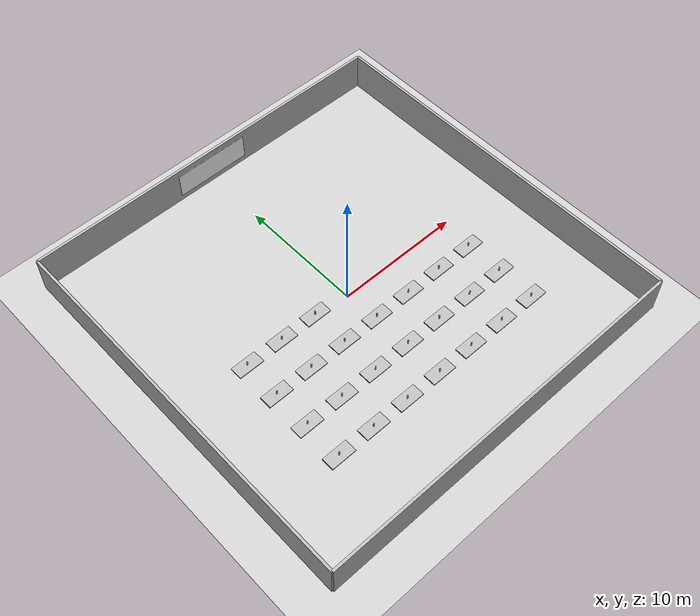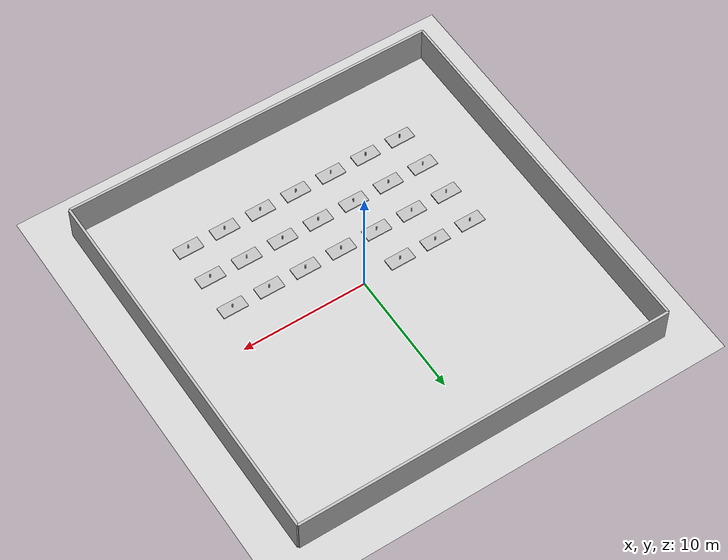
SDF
<sdf version="1.7">
 <world name="classroom_world">
  <model name="ground_plane">
   <static>1</static>
   <link name="link">
    <collision name="collision">
     <geometry><plane><normal>0 0 1</normal><size>100 100</size></plane></geometry>
     <surface><friction><ode><mu>100</mu><mu2>50</mu2></ode></friction></surface>
    </collision>
    <visual name="visual">
     <cast_shadows>0</cast_shadows>
     <geometry><plane><normal>0 0 1</normal><size>100 100</size></plane></geometry>
     <material>
      <script><uri>file://media/materials/scripts/gazebo.material</uri><name>Gazebo/Grey</name></script>
     </material>
    </visual>
   </link>
  </model>
  <model name="floor">
   <static>1</static>
   <link name="link">
    <collision name="collision"><geometry><box><size>30 30 0.1</size></box></geometry></collision>
    <visual name="visual">
     <geometry><box><size>30 30 0.1</size></box></geometry>
     <material><ambient>0.8 0.8 0.8 1</ambient></material>
    </visual>
    <pose>0 0 -0.05 0 -0 0</pose>
   </link>
  </model>
  <model name="north_wall">
   <static>1</static>
   <link name="link">
    <collision name="collision"><geometry><box><size>30 0.2 3</size></box></geometry></collision>
    <visual name="visual"><geometry><box><size>30 0.2 3</size></box></geometry></visual>
    <pose>0 15 1.5 0 -0 0</pose>
   </link>
  </model>
  <model name="south_wall">
   <static>1</static>
   <link name="link">
    <collision name="collision"><geometry><box><size>30 0.2 3</size></box></geometry></collision>
    <visual name="visual"><geometry><box><size>30 0.2 3</size></box></geometry></visual>
    <pose>0 -15 1.5 0 -0 0</pose>
   </link>
  </model>
  <model name="east_wall">
   <static>1</static>
   <link name="link">
    <collision name="collision"><geometry><box><size>0.2 30 3</size></box></geometry></collision>
    <visual name="visual"><geometry><box><size>0.2 30 3</size></box></geometry></visual>
    <pose>15 0 1.5 0 -0 0</pose>
   </link>
  </model>
  <model name="west_wall">
   <static>1</static>
   <link name="link">
    <collision name="collision"><geometry><box><size>0.2 30 3</size></box></geometry></collision>
    <visual name="visual"><geometry><box><size>0.2 30 3</size></box></geometry></visual>
    <pose>-15 0 1.5 0 -0 0</pose>
   </link>
  </model>
  <model name="whiteboard">
   <static>1</static>
   <link name="link">
    <collision name="col"><geometry><box><size>6 0.1 2</size></box></geometry></collision>
    <visual name="vis">
     <geometry><box><size>6 0.1 2</size></box></geometry>
     <material><ambient>1 1 1 1</ambient><diffuse>1 1 1 1</diffuse></material>
    </visual>
    <pose>0 14.9 1.5 0 -0 0</pose>
   </link>
  </model>
  <model name="table_r1_c1">
   <static>1</static>
   <link name="link">
    <visual name="top"><geometry><box><size>2 1 0.1</size></box></geometry></visual>
    <collision name="top_col"><geometry><box><size>2 1 0.1</size></box></geometry></collision>
    <pose>-9 -9 0.75 0 -0 0</pose>
    <visual name="leg1">
     <geometry><cylinder><radius>0.05</radius><length>0.75</length></cylinder></geometry>
    </visual>
    <collision name="leg1_col">
     <geometry><cylinder><radius>0.05</radius><length>0.75</length></cylinder></geometry>
    </collision>
    <pose>-10 -9.5 0.375 0 -0 0</pose>
    <visual name="leg2">
     <geometry><cylinder><radius>0.05</radius><length>0.75</length></cylinder></geometry>
    </visual>
    <collision name="leg2_col">
     <geometry><cylinder><radius>0.05</radius><length>0.75</length></cylinder></geometry>
    </collision>
    <pose>-8 -9.5 0.375 0 -0 0</pose>
    <visual name="leg3">
     <geometry><cylinder><radius>0.05</radius><length>0.75</length></cylinder></geometry>
    </visual>
    <collision name="leg3_col">
     <geometry><cylinder><radius>0.05</radius><length>0.75</length></cylinder></geometry>
    </collision>
    <pose>-10 -8.5 0.375 0 -0 0</pose>
    <visual name="leg4">
     <geometry><cylinder><radius>0.05</radius><length>0.75</length></cylinder></geometry>
    </visual>
    <collision name="leg4_col">
     <geometry><cylinder><radius>0.05</radius><length>0.75</length></cylinder></geometry>
    </collision>
    <pose>-8 -8.5 0.375 0 -0 0</pose>
   </link>
  </model>
  <model name="table_r1_c2">
   <static>1</static>
   <link name="link">
    <visual name="top"><geometry><box><size>2 1 0.1</size></box></geometry></visual>
    <collision name="top_col"><geometry><box><size>2 1 0.1</size></box></geometry></collision>
    <pose>-6 -9 0.75 0 -0 0</pose>
    <visual name="leg1">
     <geometry><cylinder><radius>0.05</radius><length>0.75</length></cylinder></geometry>
    </visual>
    <collision name="leg1_col">
     <geometry><cylinder><radius>0.05</radius><length>0.75</length></cylinder></geometry>
    </collision>
    <pose>-7 -9.5 0.375 0 -0 0</pose>
    <visual name="leg2">
     <geometry><cylinder><radius>0.05</radius><length>0.75</length></cylinder></geometry>
    </visual>
    <collision name="leg2_col">
     <geometry><cylinder><radius>0.05</radius><length>0.75</length></cylinder></geometry>
    </collision>
    <pose>-5 -9.5 0.375 0 -0 0</pose>
    <visual name="leg3">
     <geometry><cylinder><radius>0.05</radius><length>0.75</length></cylinder></geometry>
    </visual>
    <collision name="leg3_col">
     <geometry><cylinder><radius>0.05</radius><length>0.75</length></cylinder></geometry>
    </collision>
    <pose>-7 -8.5 0.375 0 -0 0</pose>
    <visual name="leg4">
     <geometry><cylinder><radius>0.05</radius><length>0.75</length></cylinder></geometry>
    </visual>
    <collision name="leg4_col">
     <geometry><cylinder><radius>0.05</radius><length>0.75</length></cylinder></geometry>
    </collision>
    <pose>-5 -8.5 0.375 0 -0 0</pose>
   </link>
  </model>
  <model name="table_r1_c3">
   <static>1</static>
   <link name="link">
    <visual name="top"><geometry><box><size>2 1 0.1</size></box></geometry></visual>
    <collision name="top_col"><geometry><box><size>2 1 0.1</size></box></geometry></collision>
    <pose>-3 -9 0.75 0 -0 0</pose>
    <visual name="leg1">
     <geometry><cylinder><radius>0.05</radius><length>0.75</length></cylinder></geometry>
    </visual>
    <collision name="leg1_col">
     <geometry><cylinder><radius>0.05</radius><length>0.75</length></cylinder></geometry>
    </collision>
    <pose>-4 -9.5 0.375 0 -0 0</pose>
    <visual name="leg2">
     <geometry><cylinder><radius>0.05</radius><length>0.75</length></cylinder></geometry>
    </visual>
    <collision name="leg2_col">
     <geometry><cylinder><radius>0.05</radius><length>0.75</length></cylinder></geometry>
    </collision>
    <pose>-2 -9.5 0.375 0 -0 0</pose>
    <visual name="leg3">
     <geometry><cylinder><radius>0.05</radius><length>0.75</length></cylinder></geometry>
    </visual>
    <collision name="leg3_col">
     <geometry><cylinder><radius>0.05</radius><length>0.75</length></cylinder></geometry>
    </collision>
    <pose>-4 -8.5 0.375 0 -0 0</pose>
    <visual name="leg4">
     <geometry><cylinder><radius>0.05</radius><length>0.75</length></cylinder></geometry>
    </visual>
    <collision name="leg4_col">
     <geometry><cylinder><radius>0.05</radius><length>0.75</length></cylinder></geometry>
    </collision>
    <pose>-2 -8.5 0.375 0 -0 0</pose>
   </link>
  </model>
  <model name="table_r1_c4">
   <static>1</static>
   <link name="link">
    <visual name="top"><geometry><box><size>2 1 0.1</size></box></geometry></visual>
    <collision name="top_col"><geometry><box><size>2 1 0.1</size></box></geometry></collision>
    <pose>0 -9 0.75 0 -0 0</pose>
    <visual name="leg1">
     <geometry><cylinder><radius>0.05</radius><length>0.75</length></cylinder></geometry>
    </visual>
    <collision name="leg1_col">
     <geometry><cylinder><radius>0.05</radius><length>0.75</length></cylinder></geometry>
    </collision>
    <pose>-1 -9.5 0.375 0 -0 0</pose>
    <visual name="leg2">
     <geometry><cylinder><radius>0.05</radius><length>0.75</length></cylinder></geometry>
    </visual>
    <collision name="leg2_col">
     <geometry><cylinder><radius>0.05</radius><length>0.75</length></cylinder></geometry>
    </collision>
    <pose>1 -9.5 0.375 0 -0 0</pose>
    <visual name="leg3">
     <geometry><cylinder><radius>0.05</radius><length>0.75</length></cylinder></geometry>
    </visual>
    <collision name="leg3_col">
     <geometry><cylinder><radius>0.05</radius><length>0.75</length></cylinder></geometry>
    </collision>
    <pose>-1 -8.5 0.375 0 -0 0</pose>
    <visual name="leg4">
     <geometry><cylinder><radius>0.05</radius><length>0.75</length></cylinder></geometry>
    </visual>
    <collision name="leg4_col">
     <geometry><cylinder><radius>0.05</radius><length>0.75</length></cylinder></geometry>
    </collision>
    <pose>1 -8.5 0.375 0 -0 0</pose>
   </link>
  </model>
  <model name="table_r1_c5">
   <static>1</static>
   <link name="link">
    <visual name="top"><geometry><box><size>2 1 0.1</size></box></geometry></visual>
    <collision name="top_col"><geometry><box><size>2 1 0.1</size></box></geometry></collision>
    <pose>3 -9 0.75 0 -0 0</pose>
    <visual name="leg1">
     <geometry><cylinder><radius>0.05</radius><length>0.75</length></cylinder></geometry>
    </visual>
    <collision name="leg1_col">
     <geometry><cylinder><radius>0.05</radius><length>0.75</length></cylinder></geometry>
    </collision>
    <pose>2 -9.5 0.375 0 -0 0</pose>
    <visual name="leg2">
     <geometry><cylinder><radius>0.05</radius><length>0.75</length></cylinder></geometry>
    </visual>
    <collision name="leg2_col">
     <geometry><cylinder><radius>0.05</radius><length>0.75</length></cylinder></geometry>
    </collision>
    <pose>4 -9.5 0.375 0 -0 0</pose>
    <visual name="leg3">
     <geometry><cylinder><radius>0.05</radius><length>0.75</length></cylinder></geometry>
    </visual>
    <collision name="leg3_col">
     <geometry><cylinder><radius>0.05</radius><length>0.75</length></cylinder></geometry>
    </collision>
    <pose>2 -8.5 0.375 0 -0 0</pose>
    <visual name="leg4">
     <geometry><cylinder><radius>0.05</radius><length>0.75</length></cylinder></geometry>
    </visual>
    <collision name="leg4_col">
     <geometry><cylinder><radius>0.05</radius><length>0.75</length></cylinder></geometry>
    </collision>
    <pose>4 -8.5 0.375 0 -0 0</pose>
   </link>
  </model>
  <model name="table_r1_c6">
   <static>1</static>
   <link name="link">
    <visual name="top"><geometry><box><size>2 1 0.1</size></box></geometry></visual>
    <collision name="top_col"><geometry><box><size>2 1 0.1</size></box></geometry></collision>
    <pose>6 -9 0.75 0 -0 0</pose>
    <visual name="leg1">
     <geometry><cylinder><radius>0.05</radius><length>0.75</length></cylinder></geometry>
    </visual>
    <collision name="leg1_col">
     <geometry><cylinder><radius>0.05</radius><length>0.75</length></cylinder></geometry>
    </collision>
    <pose>5 -9.5 0.375 0 -0 0</pose>
    <visual name="leg2">
     <geometry><cylinder><radius>0.05</radius><length>0.75</length></cylinder></geometry>
    </visual>
    <collision name="leg2_col">
     <geometry><cylinder><radius>0.05</radius><length>0.75</length></cylinder></geometry>
    </collision>
    <pose>7 -9.5 0.375 0 -0 0</pose>
    <visual name="leg3">
     <geometry><cylinder><radius>0.05</radius><length>0.75</length></cylinder></geometry>
    </visual>
    <collision name="leg3_col">
     <geometry><cylinder><radius>0.05</radius><length>0.75</length></cylinder></geometry>
    </collision>
    <pose>5 -8.5 0.375 0 -0 0</pose>
    <visual name="leg4">
     <geometry><cylinder><radius>0.05</radius><length>0.75</length></cylinder></geometry>
    </visual>
    <collision name="leg4_col">
     <geometry><cylinder><radius>0.05</radius><length>0.75</length></cylinder></geometry>
    </collision>
    <pose>7 -8.5 0.375 0 -0 0</pose>
   </link>
  </model>
  <model name="table_r1_c7">
   <static>1</static>
   <link name="link">
    <visual name="top"><geometry><box><size>2 1 0.1</size></box></geometry></visual>
    <collision name="top_col"><geometry><box><size>2 1 0.1</size></box></geometry></collision>
    <pose>9 -9 0.75 0 -0 0</pose>
    <visual name="leg1">
     <geometry><cylinder><radius>0.05</radius><length>0.75</length></cylinder></geometry>
    </visual>
    <collision name="leg1_col">
     <geometry><cylinder><radius>0.05</radius><length>0.75</length></cylinder></geometry>
    </collision>
    <pose>8 -9.5 0.375 0 -0 0</pose>
    <visual name="leg2">
     <geometry><cylinder><radius>0.05</radius><length>0.75</length></cylinder></geometry>
    </visual>
    <collision name="leg2_col">
     <geometry><cylinder><radius>0.05</radius><length>0.75</length></cylinder></geometry>
    </collision>
    <pose>10 -9.5 0.375 0 -0 0</pose>
    <visual name="leg3">
     <geometry><cylinder><radius>0.05</radius><length>0.75</length></cylinder></geometry>
    </visual>
    <collision name="leg3_col">
     <geometry><cylinder><radius>0.05</radius><length>0.75</length></cylinder></geometry>
    </collision>
    <pose>8 -8.5 0.375 0 -0 0</pose>
    <visual name="leg4">
     <geometry><cylinder><radius>0.05</radius><length>0.75</length></cylinder></geometry>
    </visual>
    <collision name="leg4_col">
     <geometry><cylinder><radius>0.05</radius><length>0.75</length></cylinder></geometry>
    </collision>
    <pose>10 -8.5 0.375 0 -0 0</pose>
   </link>
  </model>
  <model name="table_r2_c1">
   <static>1</static>
   <link name="link">
    <visual name="top"><geometry><box><size>2 1 0.1</size></box></geometry></visual>
    <collision name="top_col"><geometry><box><size>2 1 0.1</size></box></geometry></collision>
    <pose>-9 -6 0.75 0 -0 0</pose>
    <visual name="leg1">
     <geometry><cylinder><radius>0.05</radius><length>0.75</length></cylinder></geometry>
    </visual>
    <collision name="leg1_col">
     <geometry><cylinder><radius>0.05</radius><length>0.75</length></cylinder></geometry>
    </collision>
    <pose>-10 -6.5 0.375 0 -0 0</pose>
    <visual name="leg2">
     <geometry><cylinder><radius>0.05</radius><length>0.75</length></cylinder></geometry>
    </visual>
    <collision name="leg2_col">
     <geometry><cylinder><radius>0.05</radius><length>0.75</length></cylinder></geometry>
    </collision>
    <pose>-8 -6.5 0.375 0 -0 0</pose>
    <visual name="leg3">
     <geometry><cylinder><radius>0.05</radius><length>0.75</length></cylinder></geometry>
    </visual>
    <collision name="leg3_col">
     <geometry><cylinder><radius>0.05</radius><length>0.75</length></cylinder></geometry>
    </collision>
    <pose>-10 -5.5 0.375 0 -0 0</pose>
    <visual name="leg4">
     <geometry><cylinder><radius>0.05</radius><length>0.75</length></cylinder></geometry>
    </visual>
    <collision name="leg4_col">
     <geometry><cylinder><radius>0.05</radius><length>0.75</length></cylinder></geometry>
    </collision>
    <pose>-8 -5.5 0.375 0 -0 0</pose>
   </link>
  </model>
  <model name="table_r2_c2">
   <static>1</static>
   <link name="link">
    <visual name="top"><geometry><box><size>2 1 0.1</size></box></geometry></visual>
    <collision name="top_col"><geometry><box><size>2 1 0.1</size></box></geometry></collision>
    <pose>-6 -6 0.75 0 -0 0</pose>
    <visual name="leg1">
     <geometry><cylinder><radius>0.05</radius><length>0.75</length></cylinder></geometry>
    </visual>
    <collision name="leg1_col">
     <geometry><cylinder><radius>0.05</radius><length>0.75</length></cylinder></geometry>
    </collision>
    <pose>-7 -6.5 0.375 0 -0 0</pose>
    <visual name="leg2">
     <geometry><cylinder><radius>0.05</radius><length>0.75</length></cylinder></geometry>
    </visual>
    <collision name="leg2_col">
     <geometry><cylinder><radius>0.05</radius><length>0.75</length></cylinder></geometry>
    </collision>
    <pose>-5 -6.5 0.375 0 -0 0</pose>
    <visual name="leg3">
     <geometry><cylinder><radius>0.05</radius><length>0.75</length></cylinder></geometry>
    </visual>
    <collision name="leg3_col">
     <geometry><cylinder><radius>0.05</radius><length>0.75</length></cylinder></geometry>
    </collision>
    <pose>-7 -5.5 0.375 0 -0 0</pose>
    <visual name="leg4">
     <geometry><cylinder><radius>0.05</radius><length>0.75</length></cylinder></geometry>
    </visual>
    <collision name="leg4_col">
     <geometry><cylinder><radius>0.05</radius><length>0.75</length></cylinder></geometry>
    </collision>
    <pose>-5 -5.5 0.375 0 -0 0</pose>
   </link>
  </model>
  <model name="table_r2_c3">
   <static>1</static>
   <link name="link">
    <visual name="top"><geometry><box><size>2 1 0.1</size></box></geometry></visual>
    <collision name="top_col"><geometry><box><size>2 1 0.1</size></box></geometry></collision>
    <pose>-3 -6 0.75 0 -0 0</pose>
    <visual name="leg1">
     <geometry><cylinder><radius>0.05</radius><length>0.75</length></cylinder></geometry>
    </visual>
    <collision name="leg1_col">
     <geometry><cylinder><radius>0.05</radius><length>0.75</length></cylinder></geometry>
    </collision>
    <pose>-4 -6.5 0.375 0 -0 0</pose>
    <visual name="leg2">
     <geometry><cylinder><radius>0.05</radius><length>0.75</length></cylinder></geometry>
    </visual>
    <collision name="leg2_col">
     <geometry><cylinder><radius>0.05</radius><length>0.75</length></cylinder></geometry>
    </collision>
    <pose>-2 -6.5 0.375 0 -0 0</pose>
    <visual name="leg3">
     <geometry><cylinder><radius>0.05</radius><length>0.75</length></cylinder></geometry>
    </visual>
    <collision name="leg3_col">
     <geometry><cylinder><radius>0.05</radius><length>0.75</length></cylinder></geometry>
    </collision>
    <pose>-4 -5.5 0.375 0 -0 0</pose>
    <visual name="leg4">
     <geometry><cylinder><radius>0.05</radius><length>0.75</length></cylinder></geometry>
    </visual>
    <collision name="leg4_col">
     <geometry><cylinder><radius>0.05</radius><length>0.75</length></cylinder></geometry>
    </collision>
    <pose>-2 -5.5 0.375 0 -0 0</pose>
   </link>
  </model>
  <model name="table_r2_c4">
   <static>1</static>
   <link name="link">
    <visual name="top"><geometry><box><size>2 1 0.1</size></box></geometry></visual>
    <collision name="top_col"><geometry><box><size>2 1 0.1</size></box></geometry></collision>
    <pose>0 -6 0.75 0 -0 0</pose>
    <visual name="leg1">
     <geometry><cylinder><radius>0.05</radius><length>0.75</length></cylinder></geometry>
    </visual>
    <collision name="leg1_col">
     <geometry><cylinder><radius>0.05</radius><length>0.75</length></cylinder></geometry>
    </collision>
    <pose>-1 -6.5 0.375 0 -0 0</pose>
    <visual name="leg2">
     <geometry><cylinder><radius>0.05</radius><length>0.75</length></cylinder></geometry>
    </visual>
    <collision name="leg2_col">
     <geometry><cylinder><radius>0.05</radius><length>0.75</length></cylinder></geometry>
    </collision>
    <pose>1 -6.5 0.375 0 -0 0</pose>
    <visual name="leg3">
     <geometry><cylinder><radius>0.05</radius><length>0.75</length></cylinder></geometry>
    </visual>
    <collision name="leg3_col">
     <geometry><cylinder><radius>0.05</radius><length>0.75</length></cylinder></geometry>
    </collision>
    <pose>-1 -5.5 0.375 0 -0 0</pose>
    <visual name="leg4">
     <geometry><cylinder><radius>0.05</radius><length>0.75</length></cylinder></geometry>
    </visual>
    <collision name="leg4_col">
     <geometry><cylinder><radius>0.05</radius><length>0.75</length></cylinder></geometry>
    </collision>
    <pose>1 -5.5 0.375 0 -0 0</pose>
   </link>
  </model>
  <model name="table_r2_c5">
   <static>1</static>
   <link name="link">
    <visual name="top"><geometry><box><size>2 1 0.1</size></box></geometry></visual>
    <collision name="top_col"><geometry><box><size>2 1 0.1</size></box></geometry></collision>
    <pose>3 -6 0.75 0 -0 0</pose>
    <visual name="leg1">
     <geometry><cylinder><radius>0.05</radius><length>0.75</length></cylinder></geometry>
    </visual>
    <collision name="leg1_col">
     <geometry><cylinder><radius>0.05</radius><length>0.75</length></cylinder></geometry>
    </collision>
    <pose>2 -6.5 0.375 0 -0 0</pose>
    <visual name="leg2">
     <geometry><cylinder><radius>0.05</radius><length>0.75</length></cylinder></geometry>
    </visual>
    <collision name="leg2_col">
     <geometry><cylinder><radius>0.05</radius><length>0.75</length></cylinder></geometry>
    </collision>
    <pose>4 -6.5 0.375 0 -0 0</pose>
    <visual name="leg3">
     <geometry><cylinder><radius>0.05</radius><length>0.75</length></cylinder></geometry>
    </visual>
    <collision name="leg3_col">
     <geometry><cylinder><radius>0.05</radius><length>0.75</length></cylinder></geometry>
    </collision>
    <pose>2 -5.5 0.375 0 -0 0</pose>
    <visual name="leg4">
     <geometry><cylinder><radius>0.05</radius><length>0.75</length></cylinder></geometry>
    </visual>
    <collision name="leg4_col">
     <geometry><cylinder><radius>0.05</radius><length>0.75</length></cylinder></geometry>
    </collision>
    <pose>4 -5.5 0.375 0 -0 0</pose>
   </link>
  </model>
  <model name="table_r2_c6">
   <static>1</static>
   <link name="link">
    <visual name="top"><geometry><box><size>2 1 0.1</size></box></geometry></visual>
    <collision name="top_col"><geometry><box><size>2 1 0.1</size></box></geometry></collision>
    <pose>6 -6 0.75 0 -0 0</pose>
    <visual name="leg1">
     <geometry><cylinder><radius>0.05</radius><length>0.75</length></cylinder></geometry>
    </visual>
    <collision name="leg1_col">
     <geometry><cylinder><radius>0.05</radius><length>0.75</length></cylinder></geometry>
    </collision>
    <pose>5 -6.5 0.375 0 -0 0</pose>
    <visual name="leg2">
     <geometry><cylinder><radius>0.05</radius><length>0.75</length></cylinder></geometry>
    </visual>
    <collision name="leg2_col">
     <geometry><cylinder><radius>0.05</radius><length>0.75</length></cylinder></geometry>
    </collision>
    <pose>7 -6.5 0.375 0 -0 0</pose>
    <visual name="leg3">
     <geometry><cylinder><radius>0.05</radius><length>0.75</length></cylinder></geometry>
    </visual>
    <collision name="leg3_col">
     <geometry><cylinder><radius>0.05</radius><length>0.75</length></cylinder></geometry>
    </collision>
    <pose>5 -5.5 0.375 0 -0 0</pose>
    <visual name="leg4">
     <geometry><cylinder><radius>0.05</radius><length>0.75</length></cylinder></geometry>
    </visual>
    <collision name="leg4_col">
     <geometry><cylinder><radius>0.05</radius><length>0.75</length></cylinder></geometry>
    </collision>
    <pose>7 -5.5 0.375 0 -0 0</pose>
   </link>
  </model>
  <model name="table_r2_c7">
   <static>1</static>
   <link name="link">
    <visual name="top"><geometry><box><size>2 1 0.1</size></box></geometry></visual>
    <collision name="top_col"><geometry><box><size>2 1 0.1</size></box></geometry></collision>
    <pose>9 -6 0.75 0 -0 0</pose>
    <visual name="leg1">
     <geometry><cylinder><radius>0.05</radius><length>0.75</length></cylinder></geometry>
    </visual>
    <collision name="leg1_col">
     <geometry><cylinder><radius>0.05</radius><length>0.75</length></cylinder></geometry>
    </collision>
    <pose>8 -6.5 0.375 0 -0 0</pose>
    <visual name="leg2">
     <geometry><cylinder><radius>0.05</radius><length>0.75</length></cylinder></geometry>
    </visual>
    <collision name="leg2_col">
     <geometry><cylinder><radius>0.05</radius><length>0.75</length></cylinder></geometry>
    </collision>
    <pose>10 -6.5 0.375 0 -0 0</pose>
    <visual name="leg3">
     <geometry><cylinder><radius>0.05</radius><length>0.75</length></cylinder></geometry>
    </visual>
    <collision name="leg3_col">
     <geometry><cylinder><radius>0.05</radius><length>0.75</length></cylinder></geometry>
    </collision>
    <pose>8 -5.5 0.375 0 -0 0</pose>
    <visual name="leg4">
     <geometry><cylinder><radius>0.05</radius><length>0.75</length></cylinder></geometry>
    </visual>
    <collision name="leg4_col">
     <geometry><cylinder><radius>0.05</radius><length>0.75</length></cylinder></geometry>
    </collision>
    <pose>10 -5.5 0.375 0 -0 0</pose>
   </link>
  </model>
  <model name="table_r3_c1">
   <static>1</static>
   <link name="link">
    <visual name="top"><geometry><box><size>2 1 0.1</size></box></geometry></visual>
    <collision name="top_col"><geometry><box><size>2 1 0.1</size></box></geometry></collision>
    <pose>-9 -3 0.75 0 -0 0</pose>
    <visual name="leg1">
     <geometry><cylinder><radius>0.05</radius><length>0.75</length></cylinder></geometry>
    </visual>
    <collision name="leg1_col">
     <geometry><cylinder><radius>0.05</radius><length>0.75</length></cylinder></geometry>
    </collision>
    <pose>-10 -3.5 0.375 0 -0 0</pose>
    <visual name="leg2">
     <geometry><cylinder><radius>0.05</radius><length>0.75</length></cylinder></geometry>
    </visual>
    <collision name="leg2_col">
     <geometry><cylinder><radius>0.05</radius><length>0.75</length></cylinder></geometry>
    </collision>
    <pose>-8 -3.5 0.375 0 -0 0</pose>
    <visual name="leg3">
     <geometry><cylinder><radius>0.05</radius><length>0.75</length></cylinder></geometry>
    </visual>
    <collision name="leg3_col">
     <geometry><cylinder><radius>0.05</radius><length>0.75</length></cylinder></geometry>
    </collision>
    <pose>-10 -2.5 0.375 0 -0 0</pose>
    <visual name="leg4">
     <geometry><cylinder><radius>0.05</radius><length>0.75</length></cylinder></geometry>
    </visual>
    <collision name="leg4_col">
     <geometry><cylinder><radius>0.05</radius><length>0.75</length></cylinder></geometry>
    </collision>
    <pose>-8 -2.5 0.375 0 -0 0</pose>
   </link>
  </model>
  <model name="table_r3_c2">
   <static>1</static>
   <link name="link">
    <visual name="top"><geometry><box><size>2 1 0.1</size></box></geometry></visual>
    <collision name="top_col"><geometry><box><size>2 1 0.1</size></box></geometry></collision>
    <pose>-6 -3 0.75 0 -0 0</pose>
    <visual name="leg1">
     <geometry><cylinder><radius>0.05</radius><length>0.75</length></cylinder></geometry>
    </visual>
    <collision name="leg1_col">
     <geometry><cylinder><radius>0.05</radius><length>0.75</length></cylinder></geometry>
    </collision>
    <pose>-7 -3.5 0.375 0 -0 0</pose>
    <visual name="leg2">
     <geometry><cylinder><radius>0.05</radius><length>0.75</length></cylinder></geometry>
    </visual>
    <collision name="leg2_col">
     <geometry><cylinder><radius>0.05</radius><length>0.75</length></cylinder></geometry>
    </collision>
    <pose>-5 -3.5 0.375 0 -0 0</pose>
    <visual name="leg3">
     <geometry><cylinder><radius>0.05</radius><length>0.75</length></cylinder></geometry>
    </visual>
    <collision name="leg3_col">
     <geometry><cylinder><radius>0.05</radius><length>0.75</length></cylinder></geometry>
    </collision>
    <pose>-7 -2.5 0.375 0 -0 0</pose>
    <visual name="leg4">
     <geometry><cylinder><radius>0.05</radius><length>0.75</length></cylinder></geometry>
    </visual>
    <collision name="leg4_col">
     <geometry><cylinder><radius>0.05</radius><length>0.75</length></cylinder></geometry>
    </collision>
    <pose>-5 -2.5 0.375 0 -0 0</pose>
   </link>
  </model>
  <model name="table_r3_c3">
   <static>1</static>
   <link name="link">
    <visual name="top"><geometry><box><size>2 1 0.1</size></box></geometry></visual>
    <collision name="top_col"><geometry><box><size>2 1 0.1</size></box></geometry></collision>
    <pose>-3 -3 0.75 0 -0 0</pose>
    <visual name="leg1">
     <geometry><cylinder><radius>0.05</radius><length>0.75</length></cylinder></geometry>
    </visual>
    <collision name="leg1_col">
     <geometry><cylinder><radius>0.05</radius><length>0.75</length></cylinder></geometry>
    </collision>
    <pose>-4 -3.5 0.375 0 -0 0</pose>
    <visual name="leg2">
     <geometry><cylinder><radius>0.05</radius><length>0.75</length></cylinder></geometry>
    </visual>
    <collision name="leg2_col">
     <geometry><cylinder><radius>0.05</radius><length>0.75</length></cylinder></geometry>
    </collision>
    <pose>-2 -3.5 0.375 0 -0 0</pose>
    <visual name="leg3">
     <geometry><cylinder><radius>0.05</radius><length>0.75</length></cylinder></geometry>
    </visual>
    <collision name="leg3_col">
     <geometry><cylinder><radius>0.05</radius><length>0.75</length></cylinder></geometry>
    </collision>
    <pose>-4 -2.5 0.375 0 -0 0</pose>
    <visual name="leg4">
     <geometry><cylinder><radius>0.05</radius><length>0.75</length></cylinder></geometry>
    </visual>
    <collision name="leg4_col">
     <geometry><cylinder><radius>0.05</radius><length>0.75</length></cylinder></geometry>
    </collision>
    <pose>-2 -2.5 0.375 0 -0 0</pose>
   </link>
  </model>
  <model name="table_r3_c4">
   <static>1</static>
   <link name="link">
    <visual name="top"><geometry><box><size>2 1 0.1</size></box></geometry></visual>
    <collision name="top_col"><geometry><box><size>2 1 0.1</size></box></geometry></collision>
    <pose>0 -3 0.75 0 -0 0</pose>
    <visual name="leg1">
     <geometry><cylinder><radius>0.05</radius><length>0.75</length></cylinder></geometry>
    </visual>
    <collision name="leg1_col">
     <geometry><cylinder><radius>0.05</radius><length>0.75</length></cylinder></geometry>
    </collision>
    <pose>-1 -3.5 0.375 0 -0 0</pose>
    <visual name="leg2">
     <geometry><cylinder><radius>0.05</radius><length>0.75</length></cylinder></geometry>
    </visual>
    <collision name="leg2_col">
     <geometry><cylinder><radius>0.05</radius><length>0.75</length></cylinder></geometry>
    </collision>
    <pose>1 -3.5 0.375 0 -0 0</pose>
    <visual name="leg3">
     <geometry><cylinder><radius>0.05</radius><length>0.75</length></cylinder></geometry>
    </visual>
    <collision name="leg3_col">
     <geometry><cylinder><radius>0.05</radius><length>0.75</length></cylinder></geometry>
    </collision>
    <pose>-1 -2.5 0.375 0 -0 0</pose>
    <visual name="leg4">
     <geometry><cylinder><radius>0.05</radius><length>0.75</length></cylinder></geometry>
    </visual>
    <collision name="leg4_col">
     <geometry><cylinder><radius>0.05</radius><length>0.75</length></cylinder></geometry>
    </collision>
    <pose>1 -2.5 0.375 0 -0 0</pose>
   </link>
  </model>
  <model name="table_r3_c5">
   <static>1</static>
   <link name="link">
    <visual name="top"><geometry><box><size>2 1 0.1</size></box></geometry></visual>
    <collision name="top_col"><geometry><box><size>2 1 0.1</size></box></geometry></collision>
    <pose>3 -3 0.75 0 -0 0</pose>
    <visual name="leg1">
     <geometry><cylinder><radius>0.05</radius><length>0.75</length></cylinder></geometry>
    </visual>
    <collision name="leg1_col">
     <geometry><cylinder><radius>0.05</radius><length>0.75</length></cylinder></geometry>
    </collision>
    <pose>2 -3.5 0.375 0 -0 0</pose>
    <visual name="leg2">
     <geometry><cylinder><radius>0.05</radius><length>0.75</length></cylinder></geometry>
    </visual>
    <collision name="leg2_col">
     <geometry><cylinder><radius>0.05</radius><length>0.75</length></cylinder></geometry>
    </collision>
    <pose>4 -3.5 0.375 0 -0 0</pose>
    <visual name="leg3">
     <geometry><cylinder><radius>0.05</radius><length>0.75</length></cylinder></geometry>
    </visual>
    <collision name="leg3_col">
     <geometry><cylinder><radius>0.05</radius><length>0.75</length></cylinder></geometry>
    </collision>
    <pose>2 -2.5 0.375 0 -0 0</pose>
    <visual name="leg4">
     <geometry><cylinder><radius>0.05</radius><length>0.75</length></cylinder></geometry>
    </visual>
    <collision name="leg4_col">
     <geometry><cylinder><radius>0.05</radius><length>0.75</length></cylinder></geometry>
    </collision>
    <pose>4 -2.5 0.375 0 -0 0</pose>
   </link>
  </model>
  <model name="table_r3_c6">
   <static>1</static>
   <link name="link">
    <visual name="top"><geometry><box><size>2 1 0.1</size></box></geometry></visual>
    <collision name="top_col"><geometry><box><size>2 1 0.1</size></box></geometry></collision>
    <pose>6 -3 0.75 0 -0 0</pose>
    <visual name="leg1">
     <geometry><cylinder><radius>0.05</radius><length>0.75</length></cylinder></geometry>
    </visual>
    <collision name="leg1_col">
     <geometry><cylinder><radius>0.05</radius><length>0.75</length></cylinder></geometry>
    </collision>
    <pose>5 -3.5 0.375 0 -0 0</pose>
    <visual name="leg2">
     <geometry><cylinder><radius>0.05</radius><length>0.75</length></cylinder></geometry>
    </visual>
    <collision name="leg2_col">
     <geometry><cylinder><radius>0.05</radius><length>0.75</length></cylinder></geometry>
    </collision>
    <pose>7 -3.5 0.375 0 -0 0</pose>
    <visual name="leg3">
     <geometry><cylinder><radius>0.05</radius><length>0.75</length></cylinder></geometry>
    </visual>
    <collision name="leg3_col">
     <geometry><cylinder><radius>0.05</radius><length>0.75</length></cylinder></geometry>
    </collision>
    <pose>5 -2.5 0.375 0 -0 0</pose>
    <visual name="leg4">
     <geometry><cylinder><radius>0.05</radius><length>0.75</length></cylinder></geometry>
    </visual>
    <collision name="leg4_col">
     <geometry><cylinder><radius>0.05</radius><length>0.75</length></cylinder></geometry>
    </collision>
    <pose>7 -2.5 0.375 0 -0 0</pose>
   </link>
  </model>
  <model name="table_r3_c7">
   <static>1</static>
   <link name="link">
    <visual name="top"><geometry><box><size>2 1 0.1</size></box></geometry></visual>
    <collision name="top_col"><geometry><box><size>2 1 0.1</size></box></geometry></collision>
    <pose>9 -3 0.75 0 -0 0</pose>
    <visual name="leg1">
     <geometry><cylinder><radius>0.05</radius><length>0.75</length></cylinder></geometry>
    </visual>
    <collision name="leg1_col">
     <geometry><cylinder><radius>0.05</radius><length>0.75</length></cylinder></geometry>
    </collision>
    <pose>8 -3.5 0.375 0 -0 0</pose>
    <visual name="leg2">
     <geometry><cylinder><radius>0.05</radius><length>0.75</length></cylinder></geometry>
    </visual>
    <collision name="leg2_col">
     <geometry><cylinder><radius>0.05</radius><length>0.75</length></cylinder></geometry>
    </collision>
    <pose>10 -3.5 0.375 0 -0 0</pose>
    <visual name="leg3">
     <geometry><cylinder><radius>0.05</radius><length>0.75</length></cylinder></geometry>
    </visual>
    <collision name="leg3_col">
     <geometry><cylinder><radius>0.05</radius><length>0.75</length></cylinder></geometry>
    </collision>
    <pose>8 -2.5 0.375 0 -0 0</pose>
    <visual name="leg4">
     <geometry><cylinder><radius>0.05</radius><length>0.75</length></cylinder></geometry>
    </visual>
    <collision name="leg4_col">
     <geometry><cylinder><radius>0.05</radius><length>0.75</length></cylinder></geometry>
    </collision>
    <pose>10 -2.5 0.375 0 -0 0</pose>
   </link>
  </model>
  <model name="table_r4_c1">
   <static>1</static>
   <link name="link">
    <visual name="top"><geometry><box><size>2 1 0.1</size></box></geometry></visual>
    <collision name="top_col"><geometry><box><size>2 1 0.1</size></box></geometry></collision>
    <pose>-9 0 0.75 0 -0 0</pose>
    <visual name="leg1">
     <geometry><cylinder><radius>0.05</radius><length>0.75</length></cylinder></geometry>
    </visual>
    <collision name="leg1_col">
     <geometry><cylinder><radius>0.05</radius><length>0.75</length></cylinder></geometry>
    </collision>
    <pose>-10 -0.5 0.375 0 -0 0</pose>
    <visual name="leg2">
     <geometry><cylinder><radius>0.05</radius><length>0.75</length></cylinder></geometry>
    </visual>
    <collision name="leg2_col">
     <geometry><cylinder><radius>0.05</radius><length>0.75</length></cylinder></geometry>
    </collision>
    <pose>-8 -0.5 0.375 0 -0 0</pose>
    <visual name="leg3">
     <geometry><cylinder><radius>0.05</radius><length>0.75</length></cylinder></geometry>
    </visual>
    <collision name="leg3_col">
     <geometry><cylinder><radius>0.05</radius><length>0.75</length></cylinder></geometry>
    </collision>
    <pose>-10 0.5 0.375 0 -0 0</pose>
    <visual name="leg4">
     <geometry><cylinder><radius>0.05</radius><length>0.75</length></cylinder></geometry>
    </visual>
    <collision name="leg4_col">
     <geometry><cylinder><radius>0.05</radius><length>0.75</length></cylinder></geometry>
    </collision>
    <pose>-8 0.5 0.375 0 -0 0</pose>
   </link>
  </model>
  <model name="table_r4_c2">
   <static>1</static>
   <link name="link">
    <visual name="top"><geometry><box><size>2 1 0.1</size></box></geometry></visual>
    <collision name="top_col"><geometry><box><size>2 1 0.1</size></box></geometry></collision>
    <pose>-6 0 0.75 0 -0 0</pose>
    <visual name="leg1">
     <geometry><cylinder><radius>0.05</radius><length>0.75</length></cylinder></geometry>
    </visual>
    <collision name="leg1_col">
     <geometry><cylinder><radius>0.05</radius><length>0.75</length></cylinder></geometry>
    </collision>
    <pose>-7 -0.5 0.375 0 -0 0</pose>
    <visual name="leg2">
     <geometry><cylinder><radius>0.05</radius><length>0.75</length></cylinder></geometry>
    </visual>
    <collision name="leg2_col">
     <geometry><cylinder><radius>0.05</radius><length>0.75</length></cylinder></geometry>
    </collision>
    <pose>-5 -0.5 0.375 0 -0 0</pose>
    <visual name="leg3">
     <geometry><cylinder><radius>0.05</radius><length>0.75</length></cylinder></geometry>
    </visual>
    <collision name="leg3_col">
     <geometry><cylinder><radius>0.05</radius><length>0.75</length></cylinder></geometry>
    </collision>
    <pose>-7 0.5 0.375 0 -0 0</pose>
    <visual name="leg4">
     <geometry><cylinder><radius>0.05</radius><length>0.75</length></cylinder></geometry>
    </visual>
    <collision name="leg4_col">
     <geometry><cylinder><radius>0.05</radius><length>0.75</length></cylinder></geometry>
    </collision>
    <pose>-5 0.5 0.375 0 -0 0</pose>
   </link>
  </model>
  <model name="table_r4_c3">
   <static>1</static>
   <link name="link">
    <visual name="top"><geometry><box><size>2 1 0.1</size></box></geometry></visual>
    <collision name="top_col"><geometry><box><size>2 1 0.1</size></box></geometry></collision>
    <pose>-3 0 0.75 0 -0 0</pose>
    <visual name="leg1">
     <geometry><cylinder><radius>0.05</radius><length>0.75</length></cylinder></geometry>
    </visual>
    <collision name="leg1_col">
     <geometry><cylinder><radius>0.05</radius><length>0.75</length></cylinder></geometry>
    </collision>
    <pose>-4 -0.5 0.375 0 -0 0</pose>
    <visual name="leg2">
     <geometry><cylinder><radius>0.05</radius><length>0.75</length></cylinder></geometry>
    </visual>
    <collision name="leg2_col">
     <geometry><cylinder><radius>0.05</radius><length>0.75</length></cylinder></geometry>
    </collision>
    <pose>-2 -0.5 0.375 0 -0 0</pose>
    <visual name="leg3">
     <geometry><cylinder><radius>0.05</radius><length>0.75</length></cylinder></geometry>
    </visual>
    <collision name="leg3_col">
     <geometry><cylinder><radius>0.05</radius><length>0.75</length></cylinder></geometry>
    </collision>
    <pose>-4 0.5 0.375 0 -0 0</pose>
    <visual name="leg4">
     <geometry><cylinder><radius>0.05</radius><length>0.75</length></cylinder></geometry>
    </visual>
    <collision name="leg4_col">
     <geometry><cylinder><radius>0.05</radius><length>0.75</length></cylinder></geometry>
    </collision>
    <pose>-2 0.5 0.375 0 -0 0</pose>
   </link>
  </model>
 </world>
</sdf>
